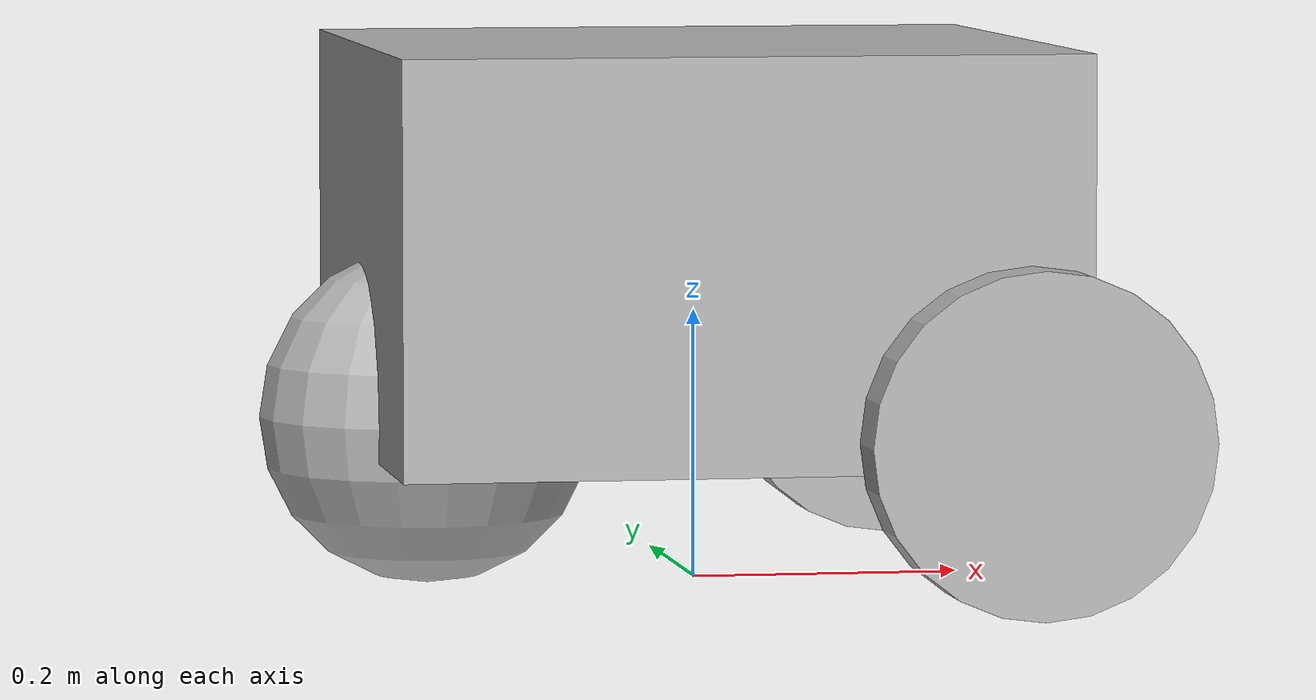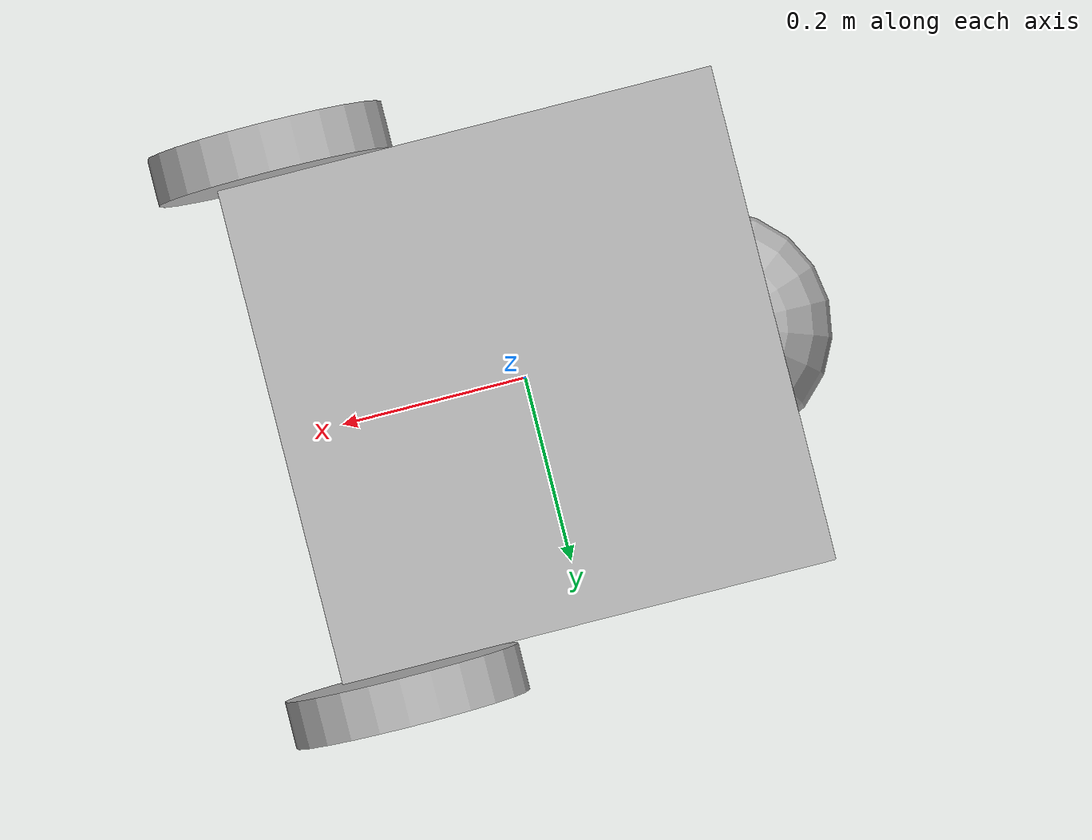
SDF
<?xml version='1.0'?>
<sdf version='1.5'>
  <model name="mobile_base">
    <link name='base_link'>
      <pose>0 0 .25 0 0 0</pose>

      <inertial>
        <mass>10.0</mass>
        <pose>-0.1 0 -0.1 0 0 0</pose>
        <inertia>
          <ixx>0.25</ixx>
          <iyy>0.5</iyy>
          <izz>0.05</izz>
        </inertia>
      </inertial>

      <collision name='collision'>
        <geometry>
          <box>
            <size>0.5 0.5 0.3</size>
          </box>
        </geometry>
      </collision>

      <visual name='visual'>
        <geometry>
          <box>
            <size>0.5 0.5 0.3</size>
          </box>
        </geometry>
      </visual>

      <collision name='caster_collision'>
        <pose>-0.2 0 -0.125 0 0 0</pose>
        <geometry>
          <sphere>
            <radius>.125</radius>
          </sphere>
        </geometry>

        <surface>
          <friction>
            <ode>
              <mu>0.1</mu>
              <mu2>0.1</mu2>
            </ode>
          </friction>
        </surface>
      </collision>

      <visual name='caster_visual'>
        <pose>-0.2 0 -0.125 0 0 0</pose>
        <geometry>
          <sphere>
            <radius>.125</radius>
          </sphere>
        </geometry>
      </visual>
    </link>

    <link name="laser_link">
    	<sensor name="laser" type="ray">
		    <pose>0.01 0 0.45 0 -0 0</pose>
		    <update_rate>10</update_rate>
		    <always_on>1</always_on>
		    <visualize>true</visualize>

		    <ray>
		      <scan>
		        <horizontal>
		          <samples>360</samples>
		          <min_angle>-3.14</min_angle>
		          <max_angle>3.14</max_angle>
		        </horizontal>
		      </scan>
		      <range>
		        <min>0.08</min>
		        <max>10</max>
		        <resolution>0.01</resolution>
		      </range>
		      <noise>
						<type>none</type>
					</noise>
		    </ray>
		    <plugin name="laser" filename="libRayPlugin.so" />

		    <plugin name="laser" filename="libgazebo_ros_ray_sensor.so">
					<ros>
						<namespace>/</namespace>
						<remapping>laser/out:=scan</remapping>
					</ros>
					<output_type>sensor_msgs/LaserScan</output_type>
					<frame_name>laser_link</frame_name>
			  </plugin>
		  </sensor>
    </link>
    <joint name="laser_joint" type="fixed">
      <parent>base_link</parent>
      <child>laser_link</child>
      <pose>0.01 0 0.45 0 0 0</pose>
    </joint>

    <link name="left_wheel">
      <pose>0.2 0.29 0.125 0 1.5707 1.5707</pose>
      <collision name="collision">
        <geometry>
          <cylinder>
            <radius>.125</radius>
            <length>.05</length>
          </cylinder>
        </geometry>
      </collision>
      <visual name="visual">
        <geometry>
          <cylinder>
            <radius>.125</radius>
            <length>.05</length>
          </cylinder>
        </geometry>
      </visual>
    </link>

    <link name="right_wheel">
      <pose>0.2 -0.29 0.125 0 1.5707 1.5707</pose>
      <collision name="collision">
        <geometry>
          <cylinder>
            <radius>.125</radius>
            <length>.05</length>
          </cylinder>
        </geometry>
      </collision>
      <visual name="visual">
        <geometry>
          <cylinder>
            <radius>.125</radius>
            <length>.05</length>
          </cylinder>
        </geometry>
      </visual>
    </link>

    <joint type="revolute" name="left_wheel_hinge">
      <pose>0 0 -0.03 0 0 0</pose>
      <child>left_wheel</child>
      <parent>base_link</parent>
      <axis>
        <use_parent_model_frame>true</use_parent_model_frame>
        <xyz>0 1 0</xyz>
      </axis>
    </joint>

    <joint type="revolute" name="right_wheel_hinge">
      <pose>0 0 0.03 0 0 0</pose>
      <child>right_wheel</child>
      <parent>base_link</parent>
      <axis>
        <use_parent_model_frame>true</use_parent_model_frame>
        <xyz>0 1 0</xyz>
      </axis>
    </joint>

    <plugin name="diff_drive" filename="libgazebo_ros_diff_drive.so">
			<ros>
				<namespace>/</namespace>
				<remapping>cmd_vel:=cmd_vel</remapping>
				<remapping>odom:=odom</remapping>
			</ros>

			<left_joint>left_wheel_hinge</left_joint>
			<right_joint>right_wheel_hinge</right_joint>

			<wheel_separation>0.58</wheel_separation>
			<wheel_diameter>0.25</wheel_diameter>

			<command_topic>cmd_vel</command_topic>
			<odometry_topic>odom</odometry_topic>

			<odometry_frame>odom</odometry_frame>
			<robot_base_frame>base_link</robot_base_frame>

			<publish_odom>true</publish_odom>
			<publish_tf>true</publish_tf>
		</plugin>

		<plugin name="joint_state_publisher" filename="libgazebo_ros_joint_state_publisher.so">
			<ros>
				<namespace>/</namespace>
				<remapping>joint_states:=joint_states</remapping>
			</ros>
			<joint_name>left_wheel_hinge</joint_name>
    	<joint_name>right_wheel_hinge</joint_name>
    	<update_rate>50.0</update_rate>
		</plugin>

		<plugin name="pose_bridge" filename="/home/nitron/ALSAI/ros_workspace/install/robot_control/lib/robot_control/libpose_bridge.so"/>

		<plugin name="gazebo_tf_plugin" filename="/home/nitron/ALSAI/ros_workspace/install/robot_control/lib/robot_control/libtf2_plugin.so">
			<ros>
				<namespace>/</namespace>
			</ros>
		</plugin>

		<plugin name="ros_init" filename="libgazebo_ros_init.so">
		  <ros>
		      <namespace>/</namespace>
		      <remapping>clock:=/clock</remapping>
		      <use_sim_time>true</use_sim_time>
		  </ros>
	</plugin>

  </model>
 </sdf>
